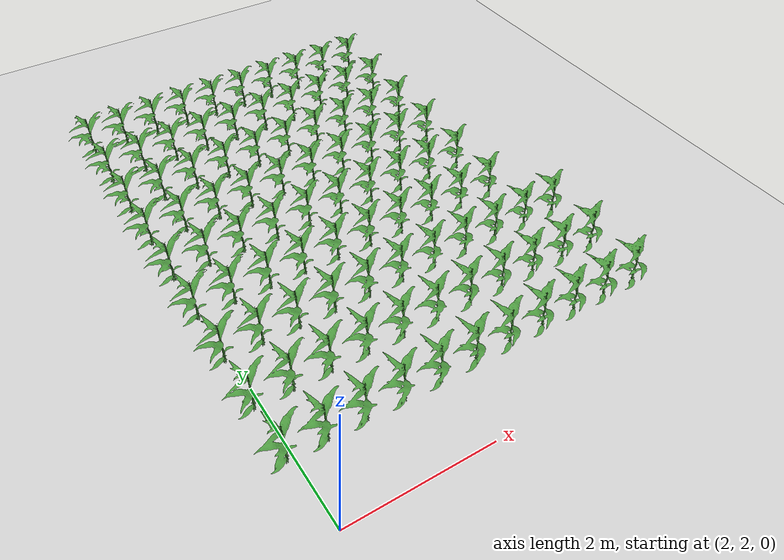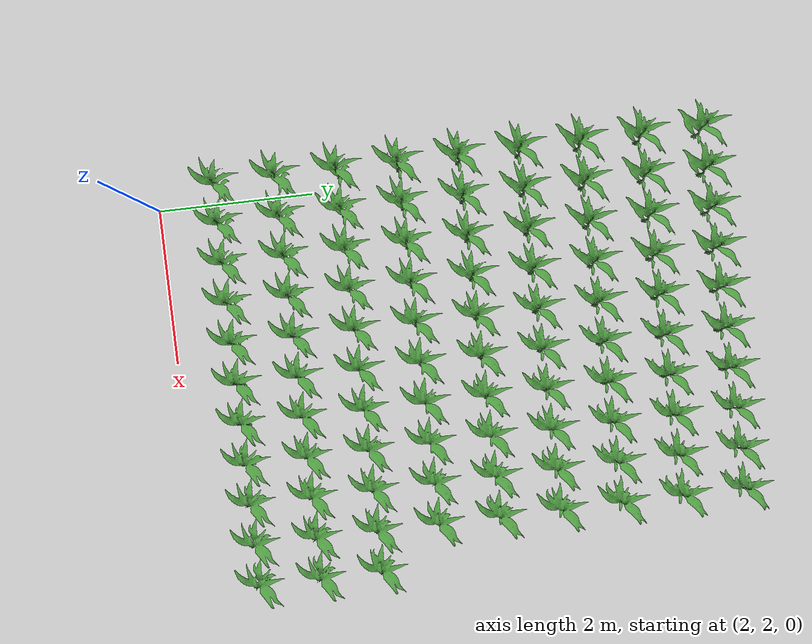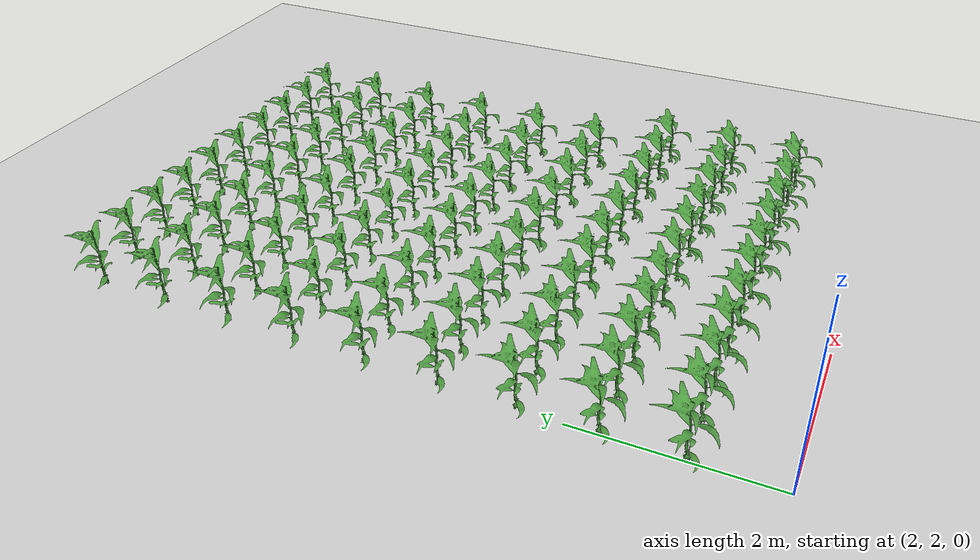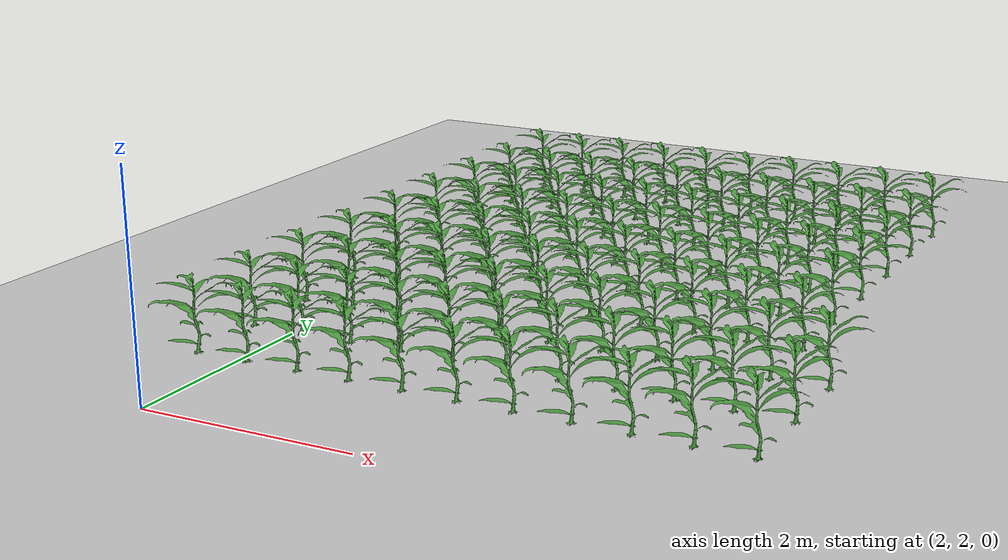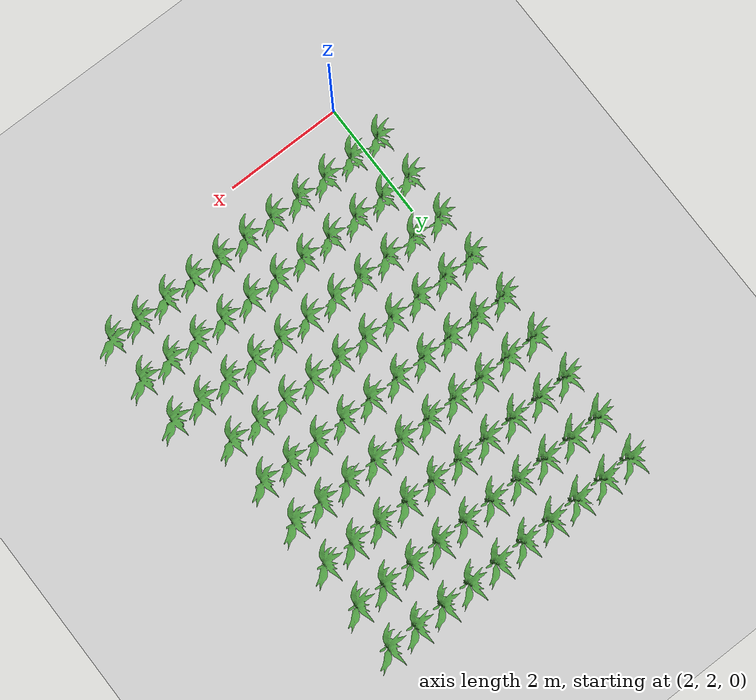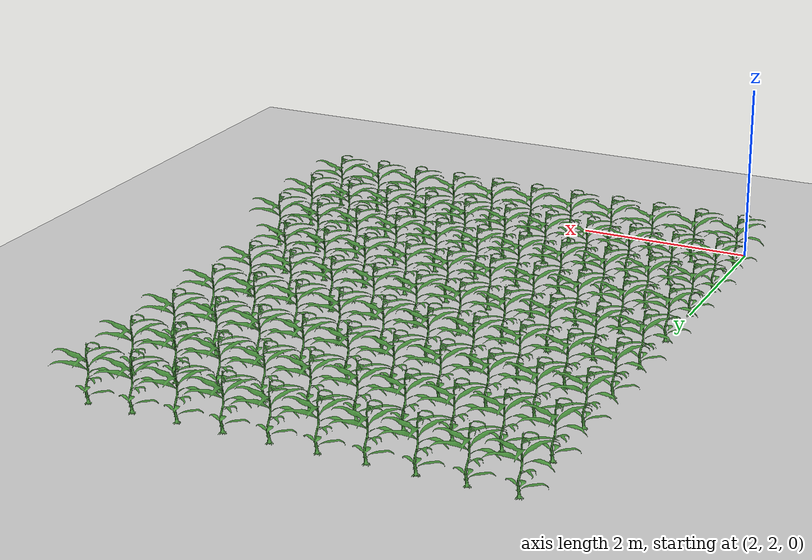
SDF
<sdf version="1.7">
 <world name="default">
  <model name="ground_plane">
   <static>1</static>
   <link name="link">
    <collision name="collision">
     <geometry><plane><normal>0 0 1</normal><size>100 100</size></plane></geometry>
     <surface>
      <contact><collide_bitmask>65535</collide_bitmask></contact>
      <friction><ode><mu>100</mu><mu2>50</mu2></ode></friction>
     </surface>
    </collision>
    <visual name="visual">
     <cast_shadows>0</cast_shadows>
     <geometry><plane><normal>0 0 1</normal><size>100 100</size></plane></geometry>
     <material>
      <script><uri>file://media/materials/scripts/gazebo.material</uri><name>Gazebo/Grey</name></script>
     </material>
    </visual>
   </link>
  </model>
  <model name="bush_1_nc_200">
   <static>1</static>
   <link name="link">
    <visual name="visual">
     <geometry>
      <mesh><uri>model://corn_stalk/meshes/corn_1.obj</uri><scale>0.002 0.002 0.001</scale></mesh>
     </geometry>
     <material>
      <script><uri>file://media/materials/scripts/gazebo.material</uri><name>Gazebo/Grass</name></script>
     </material>
    </visual>
   </link>
   <pose>0.0 4.572 0.171977 0 -0 0</pose>
  </model>
  <model name="bush_1_nc_201">
   <static>1</static>
   <link name="link">
    <visual name="visual">
     <geometry>
      <mesh><uri>model://corn_stalk/meshes/corn_1.obj</uri><scale>0.002 0.002 0.001</scale></mesh>
     </geometry>
     <material>
      <script><uri>file://media/materials/scripts/gazebo.material</uri><name>Gazebo/Grass</name></script>
     </material>
    </visual>
   </link>
   <pose>0.5 4.572 0.171977 0 -0 0</pose>
  </model>
  <model name="bush_1_nc_202">
   <static>1</static>
   <link name="link">
    <visual name="visual">
     <geometry>
      <mesh><uri>model://corn_stalk/meshes/corn_1.obj</uri><scale>0.002 0.002 0.001</scale></mesh>
     </geometry>
     <material>
      <script><uri>file://media/materials/scripts/gazebo.material</uri><name>Gazebo/Grass</name></script>
     </material>
    </visual>
   </link>
   <pose>1.0 4.572 0.171977 0 -0 0</pose>
  </model>
  <model name="bush_1_nc_203">
   <static>1</static>
   <link name="link">
    <visual name="visual">
     <geometry>
      <mesh><uri>model://corn_stalk/meshes/corn_1.obj</uri><scale>0.002 0.002 0.001</scale></mesh>
     </geometry>
     <material>
      <script><uri>file://media/materials/scripts/gazebo.material</uri><name>Gazebo/Grass</name></script>
     </material>
    </visual>
   </link>
   <pose>1.5 4.572 0.171977 0 -0 0</pose>
  </model>
  <model name="bush_1_nc_204">
   <static>1</static>
   <link name="link">
    <visual name="visual">
     <geometry>
      <mesh><uri>model://corn_stalk/meshes/corn_1.obj</uri><scale>0.002 0.002 0.001</scale></mesh>
     </geometry>
     <material>
      <script><uri>file://media/materials/scripts/gazebo.material</uri><name>Gazebo/Grass</name></script>
     </material>
    </visual>
   </link>
   <pose>2.0 4.572 0.171977 0 -0 0</pose>
  </model>
  <model name="bush_1_nc_205">
   <static>1</static>
   <link name="link">
    <visual name="visual">
     <geometry>
      <mesh><uri>model://corn_stalk/meshes/corn_1.obj</uri><scale>0.002 0.002 0.001</scale></mesh>
     </geometry>
     <material>
      <script><uri>file://media/materials/scripts/gazebo.material</uri><name>Gazebo/Grass</name></script>
     </material>
    </visual>
   </link>
   <pose>2.5 4.572 0.171977 0 -0 0</pose>
  </model>
  <model name="bush_1_nc_206">
   <static>1</static>
   <link name="link">
    <visual name="visual">
     <geometry>
      <mesh><uri>model://corn_stalk/meshes/corn_1.obj</uri><scale>0.002 0.002 0.001</scale></mesh>
     </geometry>
     <material>
      <script><uri>file://media/materials/scripts/gazebo.material</uri><name>Gazebo/Grass</name></script>
     </material>
    </visual>
   </link>
   <pose>3.0 4.572 0.171977 0 -0 0</pose>
  </model>
  <model name="bush_1_nc_207">
   <static>1</static>
   <link name="link">
    <visual name="visual">
     <geometry>
      <mesh><uri>model://corn_stalk/meshes/corn_1.obj</uri><scale>0.002 0.002 0.001</scale></mesh>
     </geometry>
     <material>
      <script><uri>file://media/materials/scripts/gazebo.material</uri><name>Gazebo/Grass</name></script>
     </material>
    </visual>
   </link>
   <pose>3.5 4.572 0.171977 0 -0 0</pose>
  </model>
  <model name="bush_1_nc_208">
   <static>1</static>
   <link name="link">
    <visual name="visual">
     <geometry>
      <mesh><uri>model://corn_stalk/meshes/corn_1.obj</uri><scale>0.002 0.002 0.001</scale></mesh>
     </geometry>
     <material>
      <script><uri>file://media/materials/scripts/gazebo.material</uri><name>Gazebo/Grass</name></script>
     </material>
    </visual>
   </link>
   <pose>4.0 4.572 0.171977 0 -0 0</pose>
  </model>
  <model name="bush_1_nc_209">
   <static>1</static>
   <link name="link">
    <visual name="visual">
     <geometry>
      <mesh><uri>model://corn_stalk/meshes/corn_1.obj</uri><scale>0.002 0.002 0.001</scale></mesh>
     </geometry>
     <material>
      <script><uri>file://media/materials/scripts/gazebo.material</uri><name>Gazebo/Grass</name></script>
     </material>
    </visual>
   </link>
   <pose>4.5 4.572 0.171977 0 -0 0</pose>
  </model>
  <model name="bush_1_nc_210">
   <static>1</static>
   <link name="link">
    <visual name="visual">
     <geometry>
      <mesh><uri>model://corn_stalk/meshes/corn_1.obj</uri><scale>0.002 0.002 0.001</scale></mesh>
     </geometry>
     <material>
      <script><uri>file://media/materials/scripts/gazebo.material</uri><name>Gazebo/Grass</name></script>
     </material>
    </visual>
   </link>
   <pose>5.0 4.572 0.171977 0 -0 0</pose>
  </model>
  <model name="bush_1_nc_240">
   <static>1</static>
   <link name="link">
    <visual name="visual">
     <geometry>
      <mesh><uri>model://corn_stalk/meshes/corn_1.obj</uri><scale>0.002 0.002 0.001</scale></mesh>
     </geometry>
     <material>
      <script><uri>file://media/materials/scripts/gazebo.material</uri><name>Gazebo/Grass</name></script>
     </material>
    </visual>
   </link>
   <pose>0.0 5.334 0.171977 0 -0 0</pose>
  </model>
  <model name="bush_1_nc_241">
   <static>1</static>
   <link name="link">
    <visual name="visual">
     <geometry>
      <mesh><uri>model://corn_stalk/meshes/corn_1.obj</uri><scale>0.002 0.002 0.001</scale></mesh>
     </geometry>
     <material>
      <script><uri>file://media/materials/scripts/gazebo.material</uri><name>Gazebo/Grass</name></script>
     </material>
    </visual>
   </link>
   <pose>0.5 5.334 0.171977 0 -0 0</pose>
  </model>
  <model name="bush_1_nc_242">
   <static>1</static>
   <link name="link">
    <visual name="visual">
     <geometry>
      <mesh><uri>model://corn_stalk/meshes/corn_1.obj</uri><scale>0.002 0.002 0.001</scale></mesh>
     </geometry>
     <material>
      <script><uri>file://media/materials/scripts/gazebo.material</uri><name>Gazebo/Grass</name></script>
     </material>
    </visual>
   </link>
   <pose>1.0 5.334 0.171977 0 -0 0</pose>
  </model>
  <model name="bush_1_nc_243">
   <static>1</static>
   <link name="link">
    <visual name="visual">
     <geometry>
      <mesh><uri>model://corn_stalk/meshes/corn_1.obj</uri><scale>0.002 0.002 0.001</scale></mesh>
     </geometry>
     <material>
      <script><uri>file://media/materials/scripts/gazebo.material</uri><name>Gazebo/Grass</name></script>
     </material>
    </visual>
   </link>
   <pose>1.5 5.334 0.171977 0 -0 0</pose>
  </model>
  <model name="bush_1_nc_244">
   <static>1</static>
   <link name="link">
    <visual name="visual">
     <geometry>
      <mesh><uri>model://corn_stalk/meshes/corn_1.obj</uri><scale>0.002 0.002 0.001</scale></mesh>
     </geometry>
     <material>
      <script><uri>file://media/materials/scripts/gazebo.material</uri><name>Gazebo/Grass</name></script>
     </material>
    </visual>
   </link>
   <pose>2.0 5.334 0.171977 0 -0 0</pose>
  </model>
  <model name="bush_1_nc_245">
   <static>1</static>
   <link name="link">
    <visual name="visual">
     <geometry>
      <mesh><uri>model://corn_stalk/meshes/corn_1.obj</uri><scale>0.002 0.002 0.001</scale></mesh>
     </geometry>
     <material>
      <script><uri>file://media/materials/scripts/gazebo.material</uri><name>Gazebo/Grass</name></script>
     </material>
    </visual>
   </link>
   <pose>2.5 5.334 0.171977 0 -0 0</pose>
  </model>
  <model name="bush_1_nc_246">
   <static>1</static>
   <link name="link">
    <visual name="visual">
     <geometry>
      <mesh><uri>model://corn_stalk/meshes/corn_1.obj</uri><scale>0.002 0.002 0.001</scale></mesh>
     </geometry>
     <material>
      <script><uri>file://media/materials/scripts/gazebo.material</uri><name>Gazebo/Grass</name></script>
     </material>
    </visual>
   </link>
   <pose>3.0 5.334 0.171977 0 -0 0</pose>
  </model>
  <model name="bush_1_nc_247">
   <static>1</static>
   <link name="link">
    <visual name="visual">
     <geometry>
      <mesh><uri>model://corn_stalk/meshes/corn_1.obj</uri><scale>0.002 0.002 0.001</scale></mesh>
     </geometry>
     <material>
      <script><uri>file://media/materials/scripts/gazebo.material</uri><name>Gazebo/Grass</name></script>
     </material>
    </visual>
   </link>
   <pose>3.5 5.334 0.171977 0 -0 0</pose>
  </model>
  <model name="bush_1_nc_248">
   <static>1</static>
   <link name="link">
    <visual name="visual">
     <geometry>
      <mesh><uri>model://corn_stalk/meshes/corn_1.obj</uri><scale>0.002 0.002 0.001</scale></mesh>
     </geometry>
     <material>
      <script><uri>file://media/materials/scripts/gazebo.material</uri><name>Gazebo/Grass</name></script>
     </material>
    </visual>
   </link>
   <pose>4.0 5.334 0.171977 0 -0 0</pose>
  </model>
  <model name="bush_1_nc_249">
   <static>1</static>
   <link name="link">
    <visual name="visual">
     <geometry>
      <mesh><uri>model://corn_stalk/meshes/corn_1.obj</uri><scale>0.002 0.002 0.001</scale></mesh>
     </geometry>
     <material>
      <script><uri>file://media/materials/scripts/gazebo.material</uri><name>Gazebo/Grass</name></script>
     </material>
    </visual>
   </link>
   <pose>4.5 5.334 0.171977 0 -0 0</pose>
  </model>
  <model name="bush_1_nc_250">
   <static>1</static>
   <link name="link">
    <visual name="visual">
     <geometry>
      <mesh><uri>model://corn_stalk/meshes/corn_1.obj</uri><scale>0.002 0.002 0.001</scale></mesh>
     </geometry>
     <material>
      <script><uri>file://media/materials/scripts/gazebo.material</uri><name>Gazebo/Grass</name></script>
     </material>
    </visual>
   </link>
   <pose>5.0 5.334 0.171977 0 -0 0</pose>
  </model>
  <model name="bush_1_nc_280">
   <static>1</static>
   <link name="link">
    <visual name="visual">
     <geometry>
      <mesh><uri>model://corn_stalk/meshes/corn_1.obj</uri><scale>0.002 0.002 0.001</scale></mesh>
     </geometry>
     <material>
      <script><uri>file://media/materials/scripts/gazebo.material</uri><name>Gazebo/Grass</name></script>
     </material>
    </visual>
   </link>
   <pose>0.0 6.096 0.171977 0 -0 0</pose>
  </model>
  <model name="bush_1_nc_281">
   <static>1</static>
   <link name="link">
    <visual name="visual">
     <geometry>
      <mesh><uri>model://corn_stalk/meshes/corn_1.obj</uri><scale>0.002 0.002 0.001</scale></mesh>
     </geometry>
     <material>
      <script><uri>file://media/materials/scripts/gazebo.material</uri><name>Gazebo/Grass</name></script>
     </material>
    </visual>
   </link>
   <pose>0.5 6.096 0.171977 0 -0 0</pose>
  </model>
  <model name="bush_1_nc_282">
   <static>1</static>
   <link name="link">
    <visual name="visual">
     <geometry>
      <mesh><uri>model://corn_stalk/meshes/corn_1.obj</uri><scale>0.002 0.002 0.001</scale></mesh>
     </geometry>
     <material>
      <script><uri>file://media/materials/scripts/gazebo.material</uri><name>Gazebo/Grass</name></script>
     </material>
    </visual>
   </link>
   <pose>1.0 6.096 0.171977 0 -0 0</pose>
  </model>
  <model name="bush_1_nc_283">
   <static>1</static>
   <link name="link">
    <visual name="visual">
     <geometry>
      <mesh><uri>model://corn_stalk/meshes/corn_1.obj</uri><scale>0.002 0.002 0.001</scale></mesh>
     </geometry>
     <material>
      <script><uri>file://media/materials/scripts/gazebo.material</uri><name>Gazebo/Grass</name></script>
     </material>
    </visual>
   </link>
   <pose>1.5 6.096 0.171977 0 -0 0</pose>
  </model>
  <model name="bush_1_nc_284">
   <static>1</static>
   <link name="link">
    <visual name="visual">
     <geometry>
      <mesh><uri>model://corn_stalk/meshes/corn_1.obj</uri><scale>0.002 0.002 0.001</scale></mesh>
     </geometry>
     <material>
      <script><uri>file://media/materials/scripts/gazebo.material</uri><name>Gazebo/Grass</name></script>
     </material>
    </visual>
   </link>
   <pose>2.0 6.096 0.171977 0 -0 0</pose>
  </model>
  <model name="bush_1_nc_285">
   <static>1</static>
   <link name="link">
    <visual name="visual">
     <geometry>
      <mesh><uri>model://corn_stalk/meshes/corn_1.obj</uri><scale>0.002 0.002 0.001</scale></mesh>
     </geometry>
     <material>
      <script><uri>file://media/materials/scripts/gazebo.material</uri><name>Gazebo/Grass</name></script>
     </material>
    </visual>
   </link>
   <pose>2.5 6.096 0.171977 0 -0 0</pose>
  </model>
  <model name="bush_1_nc_286">
   <static>1</static>
   <link name="link">
    <visual name="visual">
     <geometry>
      <mesh><uri>model://corn_stalk/meshes/corn_1.obj</uri><scale>0.002 0.002 0.001</scale></mesh>
     </geometry>
     <material>
      <script><uri>file://media/materials/scripts/gazebo.material</uri><name>Gazebo/Grass</name></script>
     </material>
    </visual>
   </link>
   <pose>3.0 6.096 0.171977 0 -0 0</pose>
  </model>
  <model name="bush_1_nc_287">
   <static>1</static>
   <link name="link">
    <visual name="visual">
     <geometry>
      <mesh><uri>model://corn_stalk/meshes/corn_1.obj</uri><scale>0.002 0.002 0.001</scale></mesh>
     </geometry>
     <material>
      <script><uri>file://media/materials/scripts/gazebo.material</uri><name>Gazebo/Grass</name></script>
     </material>
    </visual>
   </link>
   <pose>3.5 6.096 0.171977 0 -0 0</pose>
  </model>
  <model name="bush_1_nc_288">
   <static>1</static>
   <link name="link">
    <visual name="visual">
     <geometry>
      <mesh><uri>model://corn_stalk/meshes/corn_1.obj</uri><scale>0.002 0.002 0.001</scale></mesh>
     </geometry>
     <material>
      <script><uri>file://media/materials/scripts/gazebo.material</uri><name>Gazebo/Grass</name></script>
     </material>
    </visual>
   </link>
   <pose>4.0 6.096 0.171977 0 -0 0</pose>
  </model>
  <model name="bush_1_nc_289">
   <static>1</static>
   <link name="link">
    <visual name="visual">
     <geometry>
      <mesh><uri>model://corn_stalk/meshes/corn_1.obj</uri><scale>0.002 0.002 0.001</scale></mesh>
     </geometry>
     <material>
      <script><uri>file://media/materials/scripts/gazebo.material</uri><name>Gazebo/Grass</name></script>
     </material>
    </visual>
   </link>
   <pose>4.5 6.096 0.171977 0 -0 0</pose>
  </model>
  <model name="bush_1_nc_290">
   <static>1</static>
   <link name="link">
    <visual name="visual">
     <geometry>
      <mesh><uri>model://corn_stalk/meshes/corn_1.obj</uri><scale>0.002 0.002 0.001</scale></mesh>
     </geometry>
     <material>
      <script><uri>file://media/materials/scripts/gazebo.material</uri><name>Gazebo/Grass</name></script>
     </material>
    </visual>
   </link>
   <pose>5.0 6.096 0.171977 0 -0 0</pose>
  </model>
  <model name="bush_1_nc_320">
   <static>1</static>
   <link name="link">
    <visual name="visual">
     <geometry>
      <mesh><uri>model://corn_stalk/meshes/corn_1.obj</uri><scale>0.002 0.002 0.001</scale></mesh>
     </geometry>
     <material>
      <script><uri>file://media/materials/scripts/gazebo.material</uri><name>Gazebo/Grass</name></script>
     </material>
    </visual>
   </link>
   <pose>0.0 6.8580000000000005 0.171977 0 -0 0</pose>
  </model>
  <model name="bush_1_nc_321">
   <static>1</static>
   <link name="link">
    <visual name="visual">
     <geometry>
      <mesh><uri>model://corn_stalk/meshes/corn_1.obj</uri><scale>0.002 0.002 0.001</scale></mesh>
     </geometry>
     <material>
      <script><uri>file://media/materials/scripts/gazebo.material</uri><name>Gazebo/Grass</name></script>
     </material>
    </visual>
   </link>
   <pose>0.5 6.8580000000000005 0.171977 0 -0 0</pose>
  </model>
  <model name="bush_1_nc_322">
   <static>1</static>
   <link name="link">
    <visual name="visual">
     <geometry>
      <mesh><uri>model://corn_stalk/meshes/corn_1.obj</uri><scale>0.002 0.002 0.001</scale></mesh>
     </geometry>
     <material>
      <script><uri>file://media/materials/scripts/gazebo.material</uri><name>Gazebo/Grass</name></script>
     </material>
    </visual>
   </link>
   <pose>1.0 6.8580000000000005 0.171977 0 -0 0</pose>
  </model>
  <model name="bush_1_nc_323">
   <static>1</static>
   <link name="link">
    <visual name="visual">
     <geometry>
      <mesh><uri>model://corn_stalk/meshes/corn_1.obj</uri><scale>0.002 0.002 0.001</scale></mesh>
     </geometry>
     <material>
      <script><uri>file://media/materials/scripts/gazebo.material</uri><name>Gazebo/Grass</name></script>
     </material>
    </visual>
   </link>
   <pose>1.5 6.8580000000000005 0.171977 0 -0 0</pose>
  </model>
  <model name="bush_1_nc_324">
   <static>1</static>
   <link name="link">
    <visual name="visual">
     <geometry>
      <mesh><uri>model://corn_stalk/meshes/corn_1.obj</uri><scale>0.002 0.002 0.001</scale></mesh>
     </geometry>
     <material>
      <script><uri>file://media/materials/scripts/gazebo.material</uri><name>Gazebo/Grass</name></script>
     </material>
    </visual>
   </link>
   <pose>2.0 6.8580000000000005 0.171977 0 -0 0</pose>
  </model>
  <model name="bush_1_nc_325">
   <static>1</static>
   <link name="link">
    <visual name="visual">
     <geometry>
      <mesh><uri>model://corn_stalk/meshes/corn_1.obj</uri><scale>0.002 0.002 0.001</scale></mesh>
     </geometry>
     <material>
      <script><uri>file://media/materials/scripts/gazebo.material</uri><name>Gazebo/Grass</name></script>
     </material>
    </visual>
   </link>
   <pose>2.5 6.8580000000000005 0.171977 0 -0 0</pose>
  </model>
  <model name="bush_1_nc_326">
   <static>1</static>
   <link name="link">
    <visual name="visual">
     <geometry>
      <mesh><uri>model://corn_stalk/meshes/corn_1.obj</uri><scale>0.002 0.002 0.001</scale></mesh>
     </geometry>
     <material>
      <script><uri>file://media/materials/scripts/gazebo.material</uri><name>Gazebo/Grass</name></script>
     </material>
    </visual>
   </link>
   <pose>3.0 6.8580000000000005 0.171977 0 -0 0</pose>
  </model>
  <model name="bush_1_nc_327">
   <static>1</static>
   <link name="link">
    <visual name="visual">
     <geometry>
      <mesh><uri>model://corn_stalk/meshes/corn_1.obj</uri><scale>0.002 0.002 0.001</scale></mesh>
     </geometry>
     <material>
      <script><uri>file://media/materials/scripts/gazebo.material</uri><name>Gazebo/Grass</name></script>
     </material>
    </visual>
   </link>
   <pose>3.5 6.8580000000000005 0.171977 0 -0 0</pose>
  </model>
  <model name="bush_1_nc_328">
   <static>1</static>
   <link name="link">
    <visual name="visual">
     <geometry>
      <mesh><uri>model://corn_stalk/meshes/corn_1.obj</uri><scale>0.002 0.002 0.001</scale></mesh>
     </geometry>
     <material>
      <script><uri>file://media/materials/scripts/gazebo.material</uri><name>Gazebo/Grass</name></script>
     </material>
    </visual>
   </link>
   <pose>4.0 6.8580000000000005 0.171977 0 -0 0</pose>
  </model>
  <model name="bush_1_nc_329">
   <static>1</static>
   <link name="link">
    <visual name="visual">
     <geometry>
      <mesh><uri>model://corn_stalk/meshes/corn_1.obj</uri><scale>0.002 0.002 0.001</scale></mesh>
     </geometry>
     <material>
      <script><uri>file://media/materials/scripts/gazebo.material</uri><name>Gazebo/Grass</name></script>
     </material>
    </visual>
   </link>
   <pose>4.5 6.8580000000000005 0.171977 0 -0 0</pose>
  </model>
  <model name="bush_1_nc_360">
   <static>1</static>
   <link name="link">
    <visual name="visual">
     <geometry>
      <mesh><uri>model://corn_stalk/meshes/corn_1.obj</uri><scale>0.002 0.002 0.001</scale></mesh>
     </geometry>
     <material>
      <script><uri>file://media/materials/scripts/gazebo.material</uri><name>Gazebo/Grass</name></script>
     </material>
    </visual>
   </link>
   <pose>0.0 7.62 0.171977 0 -0 0</pose>
  </model>
  <model name="bush_1_nc_361">
   <static>1</static>
   <link name="link">
    <visual name="visual">
     <geometry>
      <mesh><uri>model://corn_stalk/meshes/corn_1.obj</uri><scale>0.002 0.002 0.001</scale></mesh>
     </geometry>
     <material>
      <script><uri>file://media/materials/scripts/gazebo.material</uri><name>Gazebo/Grass</name></script>
     </material>
    </visual>
   </link>
   <pose>0.5 7.62 0.171977 0 -0 0</pose>
  </model>
  <model name="bush_1_nc_362">
   <static>1</static>
   <link name="link">
    <visual name="visual">
     <geometry>
      <mesh><uri>model://corn_stalk/meshes/corn_1.obj</uri><scale>0.002 0.002 0.001</scale></mesh>
     </geometry>
     <material>
      <script><uri>file://media/materials/scripts/gazebo.material</uri><name>Gazebo/Grass</name></script>
     </material>
    </visual>
   </link>
   <pose>1.0 7.62 0.171977 0 -0 0</pose>
  </model>
  <model name="bush_1_nc_363">
   <static>1</static>
   <link name="link">
    <visual name="visual">
     <geometry>
      <mesh><uri>model://corn_stalk/meshes/corn_1.obj</uri><scale>0.002 0.002 0.001</scale></mesh>
     </geometry>
     <material>
      <script><uri>file://media/materials/scripts/gazebo.material</uri><name>Gazebo/Grass</name></script>
     </material>
    </visual>
   </link>
   <pose>1.5 7.62 0.171977 0 -0 0</pose>
  </model>
  <model name="bush_1_nc_364">
   <static>1</static>
   <link name="link">
    <visual name="visual">
     <geometry>
      <mesh><uri>model://corn_stalk/meshes/corn_1.obj</uri><scale>0.002 0.002 0.001</scale></mesh>
     </geometry>
     <material>
      <script><uri>file://media/materials/scripts/gazebo.material</uri><name>Gazebo/Grass</name></script>
     </material>
    </visual>
   </link>
   <pose>2.0 7.62 0.171977 0 -0 0</pose>
  </model>
  <model name="bush_1_nc_365">
   <static>1</static>
   <link name="link">
    <visual name="visual">
     <geometry>
      <mesh><uri>model://corn_stalk/meshes/corn_1.obj</uri><scale>0.002 0.002 0.001</scale></mesh>
     </geometry>
     <material>
      <script><uri>file://media/materials/scripts/gazebo.material</uri><name>Gazebo/Grass</name></script>
     </material>
    </visual>
   </link>
   <pose>2.5 7.62 0.171977 0 -0 0</pose>
  </model>
  <model name="bush_1_nc_366">
   <static>1</static>
   <link name="link">
    <visual name="visual">
     <geometry>
      <mesh><uri>model://corn_stalk/meshes/corn_1.obj</uri><scale>0.002 0.002 0.001</scale></mesh>
     </geometry>
     <material>
      <script><uri>file://media/materials/scripts/gazebo.material</uri><name>Gazebo/Grass</name></script>
     </material>
    </visual>
   </link>
   <pose>3.0 7.62 0.171977 0 -0 0</pose>
  </model>
  <model name="bush_1_nc_367">
   <static>1</static>
   <link name="link">
    <visual name="visual">
     <geometry>
      <mesh><uri>model://corn_stalk/meshes/corn_1.obj</uri><scale>0.002 0.002 0.001</scale></mesh>
     </geometry>
     <material>
      <script><uri>file://media/materials/scripts/gazebo.material</uri><name>Gazebo/Grass</name></script>
     </material>
    </visual>
   </link>
   <pose>3.5 7.62 0.171977 0 -0 0</pose>
  </model>
  <model name="bush_1_nc_368">
   <static>1</static>
   <link name="link">
    <visual name="visual">
     <geometry>
      <mesh><uri>model://corn_stalk/meshes/corn_1.obj</uri><scale>0.002 0.002 0.001</scale></mesh>
     </geometry>
     <material>
      <script><uri>file://media/materials/scripts/gazebo.material</uri><name>Gazebo/Grass</name></script>
     </material>
    </visual>
   </link>
   <pose>4.0 7.62 0.171977 0 -0 0</pose>
  </model>
  <model name="bush_1_nc_369">
   <static>1</static>
   <link name="link">
    <visual name="visual">
     <geometry>
      <mesh><uri>model://corn_stalk/meshes/corn_1.obj</uri><scale>0.002 0.002 0.001</scale></mesh>
     </geometry>
     <material>
      <script><uri>file://media/materials/scripts/gazebo.material</uri><name>Gazebo/Grass</name></script>
     </material>
    </visual>
   </link>
   <pose>4.5 7.62 0.171977 0 -0 0</pose>
  </model>
  <model name="bush_1_nc_400">
   <static>1</static>
   <link name="link">
    <visual name="visual">
     <geometry>
      <mesh><uri>model://corn_stalk/meshes/corn_1.obj</uri><scale>0.002 0.002 0.001</scale></mesh>
     </geometry>
     <material>
      <script><uri>file://media/materials/scripts/gazebo.material</uri><name>Gazebo/Grass</name></script>
     </material>
    </visual>
   </link>
   <pose>0.0 8.382 0.171977 0 -0 0</pose>
  </model>
  <model name="bush_1_nc_401">
   <static>1</static>
   <link name="link">
    <visual name="visual">
     <geometry>
      <mesh><uri>model://corn_stalk/meshes/corn_1.obj</uri><scale>0.002 0.002 0.001</scale></mesh>
     </geometry>
     <material>
      <script><uri>file://media/materials/scripts/gazebo.material</uri><name>Gazebo/Grass</name></script>
     </material>
    </visual>
   </link>
   <pose>0.5 8.382 0.171977 0 -0 0</pose>
  </model>
  <model name="bush_1_nc_402">
   <static>1</static>
   <link name="link">
    <visual name="visual">
     <geometry>
      <mesh><uri>model://corn_stalk/meshes/corn_1.obj</uri><scale>0.002 0.002 0.001</scale></mesh>
     </geometry>
     <material>
      <script><uri>file://media/materials/scripts/gazebo.material</uri><name>Gazebo/Grass</name></script>
     </material>
    </visual>
   </link>
   <pose>1.0 8.382 0.171977 0 -0 0</pose>
  </model>
  <model name="bush_1_nc_403">
   <static>1</static>
   <link name="link">
    <visual name="visual">
     <geometry>
      <mesh><uri>model://corn_stalk/meshes/corn_1.obj</uri><scale>0.002 0.002 0.001</scale></mesh>
     </geometry>
     <material>
      <script><uri>file://media/materials/scripts/gazebo.material</uri><name>Gazebo/Grass</name></script>
     </material>
    </visual>
   </link>
   <pose>1.5 8.382 0.171977 0 -0 0</pose>
  </model>
  <model name="bush_1_nc_404">
   <static>1</static>
   <link name="link">
    <visual name="visual">
     <geometry>
      <mesh><uri>model://corn_stalk/meshes/corn_1.obj</uri><scale>0.002 0.002 0.001</scale></mesh>
     </geometry>
     <material>
      <script><uri>file://media/materials/scripts/gazebo.material</uri><name>Gazebo/Grass</name></script>
     </material>
    </visual>
   </link>
   <pose>2.0 8.382 0.171977 0 -0 0</pose>
  </model>
  <model name="bush_1_nc_405">
   <static>1</static>
   <link name="link">
    <visual name="visual">
     <geometry>
      <mesh><uri>model://corn_stalk/meshes/corn_1.obj</uri><scale>0.002 0.002 0.001</scale></mesh>
     </geometry>
     <material>
      <script><uri>file://media/materials/scripts/gazebo.material</uri><name>Gazebo/Grass</name></script>
     </material>
    </visual>
   </link>
   <pose>2.5 8.382 0.171977 0 -0 0</pose>
  </model>
  <model name="bush_1_nc_406">
   <static>1</static>
   <link name="link">
    <visual name="visual">
     <geometry>
      <mesh><uri>model://corn_stalk/meshes/corn_1.obj</uri><scale>0.002 0.002 0.001</scale></mesh>
     </geometry>
     <material>
      <script><uri>file://media/materials/scripts/gazebo.material</uri><name>Gazebo/Grass</name></script>
     </material>
    </visual>
   </link>
   <pose>3.0 8.382 0.171977 0 -0 0</pose>
  </model>
  <model name="bush_1_nc_407">
   <static>1</static>
   <link name="link">
    <visual name="visual">
     <geometry>
      <mesh><uri>model://corn_stalk/meshes/corn_1.obj</uri><scale>0.002 0.002 0.001</scale></mesh>
     </geometry>
     <material>
      <script><uri>file://media/materials/scripts/gazebo.material</uri><name>Gazebo/Grass</name></script>
     </material>
    </visual>
   </link>
   <pose>3.5 8.382 0.171977 0 -0 0</pose>
  </model>
  <model name="bush_1_nc_408">
   <static>1</static>
   <link name="link">
    <visual name="visual">
     <geometry>
      <mesh><uri>model://corn_stalk/meshes/corn_1.obj</uri><scale>0.002 0.002 0.001</scale></mesh>
     </geometry>
     <material>
      <script><uri>file://media/materials/scripts/gazebo.material</uri><name>Gazebo/Grass</name></script>
     </material>
    </visual>
   </link>
   <pose>4.0 8.382 0.171977 0 -0 0</pose>
  </model>
  <model name="bush_1_nc_409">
   <static>1</static>
   <link name="link">
    <visual name="visual">
     <geometry>
      <mesh><uri>model://corn_stalk/meshes/corn_1.obj</uri><scale>0.002 0.002 0.001</scale></mesh>
     </geometry>
     <material>
      <script><uri>file://media/materials/scripts/gazebo.material</uri><name>Gazebo/Grass</name></script>
     </material>
    </visual>
   </link>
   <pose>4.5 8.382 0.171977 0 -0 0</pose>
  </model>
  <model name="bush_1_nc_440">
   <static>1</static>
   <link name="link">
    <visual name="visual">
     <geometry>
      <mesh><uri>model://corn_stalk/meshes/corn_1.obj</uri><scale>0.002 0.002 0.001</scale></mesh>
     </geometry>
     <material>
      <script><uri>file://media/materials/scripts/gazebo.material</uri><name>Gazebo/Grass</name></script>
     </material>
    </visual>
   </link>
   <pose>0.0 9.144 0.171977 0 -0 0</pose>
  </model>
  <model name="bush_1_nc_441">
   <static>1</static>
   <link name="link">
    <visual name="visual">
     <geometry>
      <mesh><uri>model://corn_stalk/meshes/corn_1.obj</uri><scale>0.002 0.002 0.001</scale></mesh>
     </geometry>
     <material>
      <script><uri>file://media/materials/scripts/gazebo.material</uri><name>Gazebo/Grass</name></script>
     </material>
    </visual>
   </link>
   <pose>0.5 9.144 0.171977 0 -0 0</pose>
  </model>
  <model name="bush_1_nc_442">
   <static>1</static>
   <link name="link">
    <visual name="visual">
     <geometry>
      <mesh><uri>model://corn_stalk/meshes/corn_1.obj</uri><scale>0.002 0.002 0.001</scale></mesh>
     </geometry>
     <material>
      <script><uri>file://media/materials/scripts/gazebo.material</uri><name>Gazebo/Grass</name></script>
     </material>
    </visual>
   </link>
   <pose>1.0 9.144 0.171977 0 -0 0</pose>
  </model>
  <model name="bush_1_nc_443">
   <static>1</static>
   <link name="link">
    <visual name="visual">
     <geometry>
      <mesh><uri>model://corn_stalk/meshes/corn_1.obj</uri><scale>0.002 0.002 0.001</scale></mesh>
     </geometry>
     <material>
      <script><uri>file://media/materials/scripts/gazebo.material</uri><name>Gazebo/Grass</name></script>
     </material>
    </visual>
   </link>
   <pose>1.5 9.144 0.171977 0 -0 0</pose>
  </model>
  <model name="bush_1_nc_444">
   <static>1</static>
   <link name="link">
    <visual name="visual">
     <geometry>
      <mesh><uri>model://corn_stalk/meshes/corn_1.obj</uri><scale>0.002 0.002 0.001</scale></mesh>
     </geometry>
     <material>
      <script><uri>file://media/materials/scripts/gazebo.material</uri><name>Gazebo/Grass</name></script>
     </material>
    </visual>
   </link>
   <pose>2.0 9.144 0.171977 0 -0 0</pose>
  </model>
  <model name="bush_1_nc_445">
   <static>1</static>
   <link name="link">
    <visual name="visual">
     <geometry>
      <mesh><uri>model://corn_stalk/meshes/corn_1.obj</uri><scale>0.002 0.002 0.001</scale></mesh>
     </geometry>
     <material>
      <script><uri>file://media/materials/scripts/gazebo.material</uri><name>Gazebo/Grass</name></script>
     </material>
    </visual>
   </link>
   <pose>2.5 9.144 0.171977 0 -0 0</pose>
  </model>
  <model name="bush_1_nc_446">
   <static>1</static>
   <link name="link">
    <visual name="visual">
     <geometry>
      <mesh><uri>model://corn_stalk/meshes/corn_1.obj</uri><scale>0.002 0.002 0.001</scale></mesh>
     </geometry>
     <material>
      <script><uri>file://media/materials/scripts/gazebo.material</uri><name>Gazebo/Grass</name></script>
     </material>
    </visual>
   </link>
   <pose>3.0 9.144 0.171977 0 -0 0</pose>
  </model>
  <model name="bush_1_nc_447">
   <static>1</static>
   <link name="link">
    <visual name="visual">
     <geometry>
      <mesh><uri>model://corn_stalk/meshes/corn_1.obj</uri><scale>0.002 0.002 0.001</scale></mesh>
     </geometry>
     <material>
      <script><uri>file://media/materials/scripts/gazebo.material</uri><name>Gazebo/Grass</name></script>
     </material>
    </visual>
   </link>
   <pose>3.5 9.144 0.171977 0 -0 0</pose>
  </model>
  <model name="bush_1_nc_448">
   <static>1</static>
   <link name="link">
    <visual name="visual">
     <geometry>
      <mesh><uri>model://corn_stalk/meshes/corn_1.obj</uri><scale>0.002 0.002 0.001</scale></mesh>
     </geometry>
     <material>
      <script><uri>file://media/materials/scripts/gazebo.material</uri><name>Gazebo/Grass</name></script>
     </material>
    </visual>
   </link>
   <pose>4.0 9.144 0.171977 0 -0 0</pose>
  </model>
  <model name="bush_1_nc_449">
   <static>1</static>
   <link name="link">
    <visual name="visual">
     <geometry>
      <mesh><uri>model://corn_stalk/meshes/corn_1.obj</uri><scale>0.002 0.002 0.001</scale></mesh>
     </geometry>
     <material>
      <script><uri>file://media/materials/scripts/gazebo.material</uri><name>Gazebo/Grass</name></script>
     </material>
    </visual>
   </link>
   <pose>4.5 9.144 0.171977 0 -0 0</pose>
  </model>
  <model name="bush_1_nc_480">
   <static>1</static>
   <link name="link">
    <visual name="visual">
     <geometry>
      <mesh><uri>model://corn_stalk/meshes/corn_1.obj</uri><scale>0.002 0.002 0.001</scale></mesh>
     </geometry>
     <material>
      <script><uri>file://media/materials/scripts/gazebo.material</uri><name>Gazebo/Grass</name></script>
     </material>
    </visual>
   </link>
   <pose>0.0 9.906 0.171977 0 -0 0</pose>
  </model>
  <model name="bush_1_nc_481">
   <static>1</static>
   <link name="link">
    <visual name="visual">
     <geometry>
      <mesh><uri>model://corn_stalk/meshes/corn_1.obj</uri><scale>0.002 0.002 0.001</scale></mesh>
     </geometry>
     <material>
      <script><uri>file://media/materials/scripts/gazebo.material</uri><name>Gazebo/Grass</name></script>
     </material>
    </visual>
   </link>
   <pose>0.5 9.906 0.171977 0 -0 0</pose>
  </model>
  <model name="bush_1_nc_482">
   <static>1</static>
   <link name="link">
    <visual name="visual">
     <geometry>
      <mesh><uri>model://corn_stalk/meshes/corn_1.obj</uri><scale>0.002 0.002 0.001</scale></mesh>
     </geometry>
     <material>
      <script><uri>file://media/materials/scripts/gazebo.material</uri><name>Gazebo/Grass</name></script>
     </material>
    </visual>
   </link>
   <pose>1.0 9.906 0.171977 0 -0 0</pose>
  </model>
  <model name="bush_1_nc_483">
   <static>1</static>
   <link name="link">
    <visual name="visual">
     <geometry>
      <mesh><uri>model://corn_stalk/meshes/corn_1.obj</uri><scale>0.002 0.002 0.001</scale></mesh>
     </geometry>
     <material>
      <script><uri>file://media/materials/scripts/gazebo.material</uri><name>Gazebo/Grass</name></script>
     </material>
    </visual>
   </link>
   <pose>1.5 9.906 0.171977 0 -0 0</pose>
  </model>
  <model name="bush_1_nc_484">
   <static>1</static>
   <link name="link">
    <visual name="visual">
     <geometry>
      <mesh><uri>model://corn_stalk/meshes/corn_1.obj</uri><scale>0.002 0.002 0.001</scale></mesh>
     </geometry>
     <material>
      <script><uri>file://media/materials/scripts/gazebo.material</uri><name>Gazebo/Grass</name></script>
     </material>
    </visual>
   </link>
   <pose>2.0 9.906 0.171977 0 -0 0</pose>
  </model>
  <model name="bush_1_nc_485">
   <static>1</static>
   <link name="link">
    <visual name="visual">
     <geometry>
      <mesh><uri>model://corn_stalk/meshes/corn_1.obj</uri><scale>0.002 0.002 0.001</scale></mesh>
     </geometry>
     <material>
      <script><uri>file://media/materials/scripts/gazebo.material</uri><name>Gazebo/Grass</name></script>
     </material>
    </visual>
   </link>
   <pose>2.5 9.906 0.171977 0 -0 0</pose>
  </model>
  <model name="bush_1_nc_486">
   <static>1</static>
   <link name="link">
    <visual name="visual">
     <geometry>
      <mesh><uri>model://corn_stalk/meshes/corn_1.obj</uri><scale>0.002 0.002 0.001</scale></mesh>
     </geometry>
     <material>
      <script><uri>file://media/materials/scripts/gazebo.material</uri><name>Gazebo/Grass</name></script>
     </material>
    </visual>
   </link>
   <pose>3.0 9.906 0.171977 0 -0 0</pose>
  </model>
  <model name="bush_1_nc_487">
   <static>1</static>
   <link name="link">
    <visual name="visual">
     <geometry>
      <mesh><uri>model://corn_stalk/meshes/corn_1.obj</uri><scale>0.002 0.002 0.001</scale></mesh>
     </geometry>
     <material>
      <script><uri>file://media/materials/scripts/gazebo.material</uri><name>Gazebo/Grass</name></script>
     </material>
    </visual>
   </link>
   <pose>3.5 9.906 0.171977 0 -0 0</pose>
  </model>
  <model name="bush_1_nc_488">
   <static>1</static>
   <link name="link">
    <visual name="visual">
     <geometry>
      <mesh><uri>model://corn_stalk/meshes/corn_1.obj</uri><scale>0.002 0.002 0.001</scale></mesh>
     </geometry>
     <material>
      <script><uri>file://media/materials/scripts/gazebo.material</uri><name>Gazebo/Grass</name></script>
     </material>
    </visual>
   </link>
   <pose>4.0 9.906 0.171977 0 -0 0</pose>
  </model>
  <model name="bush_1_nc_489">
   <static>1</static>
   <link name="link">
    <visual name="visual">
     <geometry>
      <mesh><uri>model://corn_stalk/meshes/corn_1.obj</uri><scale>0.002 0.002 0.001</scale></mesh>
     </geometry>
     <material>
      <script><uri>file://media/materials/scripts/gazebo.material</uri><name>Gazebo/Grass</name></script>
     </material>
    </visual>
   </link>
   <pose>4.5 9.906 0.171977 0 -0 0</pose>
  </model>
  <model name="bush_1_nc_520">
   <static>1</static>
   <link name="link">
    <visual name="visual">
     <geometry>
      <mesh><uri>model://corn_stalk/meshes/corn_1.obj</uri><scale>0.002 0.002 0.001</scale></mesh>
     </geometry>
     <material>
      <script><uri>file://media/materials/scripts/gazebo.material</uri><name>Gazebo/Grass</name></script>
     </material>
    </visual>
   </link>
   <pose>0.0 10.668 0.171977 0 -0 0</pose>
  </model>
  <model name="bush_1_nc_521">
   <static>1</static>
   <link name="link">
    <visual name="visual">
     <geometry>
      <mesh><uri>model://corn_stalk/meshes/corn_1.obj</uri><scale>0.002 0.002 0.001</scale></mesh>
     </geometry>
     <material>
      <script><uri>file://media/materials/scripts/gazebo.material</uri><name>Gazebo/Grass</name></script>
     </material>
    </visual>
   </link>
   <pose>0.5 10.668 0.171977 0 -0 0</pose>
  </model>
  <model name="bush_1_nc_522">
   <static>1</static>
   <link name="link">
    <visual name="visual">
     <geometry>
      <mesh><uri>model://corn_stalk/meshes/corn_1.obj</uri><scale>0.002 0.002 0.001</scale></mesh>
     </geometry>
     <material>
      <script><uri>file://media/materials/scripts/gazebo.material</uri><name>Gazebo/Grass</name></script>
     </material>
    </visual>
   </link>
   <pose>1.0 10.668 0.171977 0 -0 0</pose>
  </model>
  <model name="bush_1_nc_523">
   <static>1</static>
   <link name="link">
    <visual name="visual">
     <geometry>
      <mesh><uri>model://corn_stalk/meshes/corn_1.obj</uri><scale>0.002 0.002 0.001</scale></mesh>
     </geometry>
     <material>
      <script><uri>file://media/materials/scripts/gazebo.material</uri><name>Gazebo/Grass</name></script>
     </material>
    </visual>
   </link>
   <pose>1.5 10.668 0.171977 0 -0 0</pose>
  </model>
  <model name="bush_1_nc_524">
   <static>1</static>
   <link name="link">
    <visual name="visual">
     <geometry>
      <mesh><uri>model://corn_stalk/meshes/corn_1.obj</uri><scale>0.002 0.002 0.001</scale></mesh>
     </geometry>
     <material>
      <script><uri>file://media/materials/scripts/gazebo.material</uri><name>Gazebo/Grass</name></script>
     </material>
    </visual>
   </link>
   <pose>2.0 10.668 0.171977 0 -0 0</pose>
  </model>
  <model name="bush_1_nc_525">
   <static>1</static>
   <link name="link">
    <visual name="visual">
     <geometry>
      <mesh><uri>model://corn_stalk/meshes/corn_1.obj</uri><scale>0.002 0.002 0.001</scale></mesh>
     </geometry>
     <material>
      <script><uri>file://media/materials/scripts/gazebo.material</uri><name>Gazebo/Grass</name></script>
     </material>
    </visual>
   </link>
   <pose>2.5 10.668 0.171977 0 -0 0</pose>
  </model>
  <model name="bush_1_nc_526">
   <static>1</static>
   <link name="link">
    <visual name="visual">
     <geometry>
      <mesh><uri>model://corn_stalk/meshes/corn_1.obj</uri><scale>0.002 0.002 0.001</scale></mesh>
     </geometry>
     <material>
      <script><uri>file://media/materials/scripts/gazebo.material</uri><name>Gazebo/Grass</name></script>
     </material>
    </visual>
   </link>
   <pose>3.0 10.668 0.171977 0 -0 0</pose>
  </model>
  <model name="bush_1_nc_527">
   <static>1</static>
   <link name="link">
    <visual name="visual">
     <geometry>
      <mesh><uri>model://corn_stalk/meshes/corn_1.obj</uri><scale>0.002 0.002 0.001</scale></mesh>
     </geometry>
     <material>
      <script><uri>file://media/materials/scripts/gazebo.material</uri><name>Gazebo/Grass</name></script>
     </material>
    </visual>
   </link>
   <pose>3.5 10.668 0.171977 0 -0 0</pose>
  </model>
  <model name="bush_1_nc_528">
   <static>1</static>
   <link name="link">
    <visual name="visual">
     <geometry>
      <mesh><uri>model://corn_stalk/meshes/corn_1.obj</uri><scale>0.002 0.002 0.001</scale></mesh>
     </geometry>
     <material>
      <script><uri>file://media/materials/scripts/gazebo.material</uri><name>Gazebo/Grass</name></script>
     </material>
    </visual>
   </link>
   <pose>4.0 10.668 0.171977 0 -0 0</pose>
  </model>
  <model name="bush_1_nc_529">
   <static>1</static>
   <link name="link">
    <visual name="visual">
     <geometry>
      <mesh><uri>model://corn_stalk/meshes/corn_1.obj</uri><scale>0.002 0.002 0.001</scale></mesh>
     </geometry>
     <material>
      <script><uri>file://media/materials/scripts/gazebo.material</uri><name>Gazebo/Grass</name></script>
     </material>
    </visual>
   </link>
   <pose>4.5 10.668 0.171977 0 -0 0</pose>
  </model>
 </world>
</sdf>
